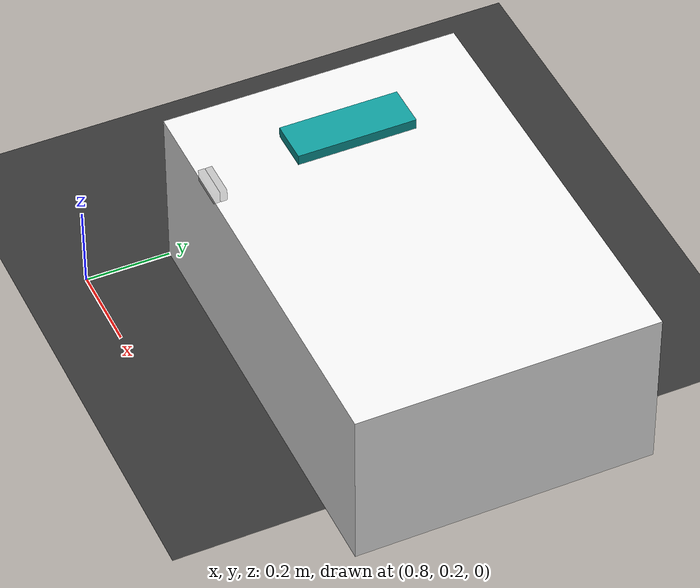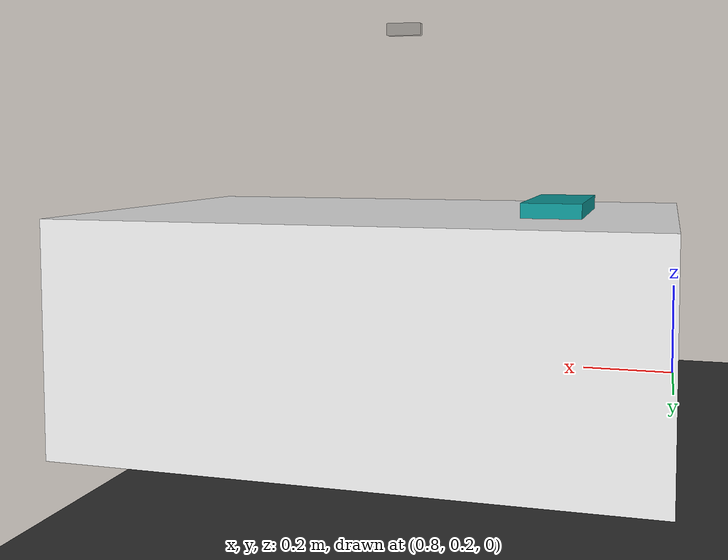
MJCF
<?xml version="1.0" encoding="utf-8"?>
<mujoco>
	<compiler angle="radian" coordinate="local" meshdir="../stls/fetch" texturedir="../textures"></compiler>
	<option timestep="0.002">
		<flag warmstart="enable"></flag>
	</option>

	<include file="shared.xml"></include>

	<worldbody>
		<geom name="floor0" pos="0.8 0.75 0" size="0.85 0.70 1" type="plane" condim="3" material="floor_mat"></geom>
		<body name="floor0" pos="0.8 0.75 0">
			<site name="target0" pos="0 0 0.5" size="0.02 0.02 0.02" rgba="1 0 0 0" type="sphere"></site>
		</body>

		<include file="invisible_robot.xml"></include>

		<body pos="1.3 0.75 0.2" name="table0">
			<geom size="0.5 0.35 0.2" type="box" mass="2000" material="table_mat"></geom>
		</body>
		<body name="sidecamera_target" pos="1 0.75 0.4">
			<site name="sidecamera_target" pos="0 0 0" size="0.1 0.1 0.1" rgba="1 0 0 0" type="sphere"></site>
		</body>
		<body name="object0" pos="1 0.75 0.4">
			<joint name="object0:joint" type="free" damping="0.01"></joint>
			<geom size="0.05 0.14 0.025" type="box" condim="3" name="object0" material="block_mat" mass="2"></geom>
			<site name="object0" pos="0 0 0" size="0.02 0.02 0.02" rgba="1 0 0 1" type="sphere"></site>
		</body>

		<light directional="true" ambient="0.2 0.2 0.2" diffuse="0.8 0.8 0.8" specular="0.3 0.3 0.3" castshadow="false" pos="0 0 4" dir="0 0 -1" name="light0"></light>

		<camera mode="targetbody" euler="0 0 1.57" fovy="43.3" name="object_sidecamera" pos="2 0 1" target="sidecamera_target"></camera>
	</worldbody>

	<actuator></actuator>
</mujoco>

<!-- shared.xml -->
<mujoco>
    <asset>
        <texture type="skybox" builtin="gradient" rgb1="0.44 0.85 0.56" rgb2="0.46 0.87 0.58" width="32" height="32"></texture>
        <texture name="texture_block" file="block.png" gridsize="3 4" gridlayout=".U..LFRB.D.."></texture>

        <material name="floor_mat" specular="0" shininess="0.5" reflectance="0" rgba="0.2 0.2 0.2 1"></material>
        <material name="table_mat" specular="0" shininess="0.5" reflectance="0" rgba="0.93 0.93 0.93 1"></material>
        <material name="block_mat" specular="0" shininess="0.5" reflectance="0" rgba="0.05 0.6 0.6 1"></material>
        <material name="puck_mat" specular="0" shininess="0.5" reflectance="0" rgba="0.2 0.2 0.2 1"></material>
        <material name="robot0:geomMat" shininess="0.03" specular="0.4"></material>
        <material name="robot0:gripper_finger_mat" shininess="0.03" specular="0.4" reflectance="0"></material>
        <material name="robot0:gripper_mat" shininess="0.03" specular="0.4" reflectance="0"></material>
        <material name="robot0:arm_mat" shininess="0.03" specular="0.4" reflectance="0"></material>
        <material name="robot0:head_mat" shininess="0.03" specular="0.4" reflectance="0"></material>
        <material name="robot0:torso_mat" shininess="0.03" specular="0.4" reflectance="0"></material>
        <material name="robot0:base_mat" shininess="0.03" specular="0.4" reflectance="0"></material>

        <mesh file="base_link_collision.stl" name="robot0:base_link"></mesh>
        <mesh file="bellows_link_collision.stl" name="robot0:bellows_link"></mesh>
        <mesh file="elbow_flex_link_collision.stl" name="robot0:elbow_flex_link"></mesh>
        <mesh file="estop_link.stl" name="robot0:estop_link"></mesh>
        <mesh file="forearm_roll_link_collision.stl" name="robot0:forearm_roll_link"></mesh>
        <mesh file="gripper_link.stl" name="robot0:gripper_link"></mesh>
        <mesh file="head_pan_link_collision.stl" name="robot0:head_pan_link"></mesh>
        <mesh file="head_tilt_link_collision.stl" name="robot0:head_tilt_link"></mesh>
        <mesh file="l_wheel_link_collision.stl" name="robot0:l_wheel_link"></mesh>
        <mesh file="laser_link.stl" name="robot0:laser_link"></mesh>
        <mesh file="r_wheel_link_collision.stl" name="robot0:r_wheel_link"></mesh>
        <mesh file="torso_lift_link_collision.stl" name="robot0:torso_lift_link"></mesh>
        <mesh file="shoulder_pan_link_collision.stl" name="robot0:shoulder_pan_link"></mesh>
        <mesh file="shoulder_lift_link_collision.stl" name="robot0:shoulder_lift_link"></mesh>
        <mesh file="upperarm_roll_link_collision.stl" name="robot0:upperarm_roll_link"></mesh>
        <mesh file="wrist_flex_link_collision.stl" name="robot0:wrist_flex_link"></mesh>
        <mesh file="wrist_roll_link_collision.stl" name="robot0:wrist_roll_link"></mesh>
        <mesh file="torso_fixed_link.stl" name="robot0:torso_fixed_link"></mesh>
    </asset>

    <equality>
        <weld body1="robot0:mocap" body2="robot0:gripper_link" solimp="0.9 0.95 0.001" solref="0.02 1"></weld>
    </equality>

    <contact>
        <exclude body1="robot0:r_gripper_finger_link" body2="robot0:l_gripper_finger_link"></exclude>
        <exclude body1="robot0:torso_lift_link" body2="robot0:torso_fixed_link"></exclude>
        <exclude body1="robot0:torso_lift_link" body2="robot0:shoulder_pan_link"></exclude>
    </contact>

    <default>
        <default class="robot0:fetch">
            <geom margin="0.001" material="robot0:geomMat" rgba="1 1 1 1" solimp="0.99 0.99 0.01" solref="0.01 1" type="mesh" user="0"></geom>
            <joint armature="1" damping="50" frictionloss="0" stiffness="0"></joint>

            <default class="robot0:fetchGripper">
                <geom condim="4" margin="0.001" type="box" user="0" rgba="0.356 0.361 0.376 1.0"></geom>
                <joint armature="100" damping="1000" limited="true" solimplimit="0.99 0.999 0.01" solreflimit="0.01 1" type="slide"></joint>
            </default>

            <default class="robot0:grey">
                <geom rgba="0.356 0.361 0.376 1.0"></geom>
            </default>
            <default class="robot0:blue">
                <geom rgba="0.086 0.506 0.767 1.0"></geom>
            </default>
        </default>
    </default>
</mujoco>

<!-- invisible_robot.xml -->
<mujoco>
	<body mocap="true" name="robot0:mocap" pos="0 0 0">
		<geom conaffinity="0" contype="0" pos="0 0 0" rgba="0 0 0 0" size="0.005 0.005 0.005" type="box"></geom>
		<geom conaffinity="0" contype="0" pos="0 0 0" rgba="0 0 0 0" size="1 0.005 0.005" type="box"></geom>
		<geom conaffinity="0" contype="0" pos="0 0 0" rgba="0 0 0 0" size="0.005 1 0.001" type="box"></geom>
		<geom conaffinity="0" contype="0" pos="0 0 0" rgba="0 0 0 0" size="0.005 0.005 1" type="box"></geom>
	</body>
	<body childclass="robot0:fetch" name="robot0:base_link" pos="0.2869 0.2641 0">
		<joint armature="0.0001" axis="1 0 0" damping="1e+11" name="robot0:slide0" pos="0 0 0" type="slide"></joint>
		<joint armature="0.0001" axis="0 1 0" damping="1e+11" name="robot0:slide1" pos="0 0 0" type="slide"></joint>
		<joint armature="0.0001" axis="0 0 1" damping="1e+11" name="robot0:slide2" pos="0 0 0" type="slide"></joint>
		<inertial diaginertia="1.2869 1.2236 0.9868" mass="70.1294" pos="-0.0036 0 0.0014" quat="0.7605 -0.0133 -0.0061 0.6491"></inertial>
		<geom rgba="0 0 0 0" mesh="robot0:base_link" name="robot0:base_link" material="robot0:base_mat" class="robot0:grey"></geom>
		<body name="robot0:torso_lift_link" pos="-0.0869 0 0.3774">
			<inertial diaginertia="0.3365 0.3354 0.0943" mass="10.7796" pos="-0.0013 -0.0009 0.2935" quat="0.9993 -0.0006 0.0336 0.0185"></inertial>
			<joint axis="0 0 1" damping="1e+07" name="robot0:torso_lift_joint" range="0.0386 0.3861" type="slide"></joint>
			<geom rgba="0 0 0 0" mesh="robot0:torso_lift_link" name="robot0:torso_lift_link" material="robot0:torso_mat"></geom>
			<body name="robot0:head_pan_link" pos="0.0531 0 0.603">
				<inertial diaginertia="0.0185 0.0128 0.0095" mass="2.2556" pos="0.0321 0.0161 0.039" quat="0.5148 0.5451 -0.453 0.4823"></inertial>
				<joint axis="0 0 1" name="robot0:head_pan_joint" range="-1.57 1.57"></joint>
				<geom rgba="0 0 0 0" mesh="robot0:head_pan_link" name="robot0:head_pan_link" material="robot0:head_mat" class="robot0:grey"></geom>
				<body name="robot0:head_tilt_link" pos="0.1425 0 0.058">
					<inertial diaginertia="0.0063 0.0059 0.0014" mass="0.9087" pos="0.0081 0.0025 0.0113" quat="0.6458 0.66 -0.274 0.2689"></inertial>
					<joint axis="0 1 0" damping="1000" name="robot0:head_tilt_joint" range="-0.76 1.45" ref="0.06"></joint>
					<geom rgba="0 0 0 0" mesh="robot0:head_tilt_link" name="robot0:head_tilt_link" material="robot0:head_mat" class="robot0:blue"></geom>
					<body name="robot0:head_camera_link" pos="0.055 0 0.0225">
						<inertial diaginertia="0 0 0" mass="0" pos="0.055 0 0.0225"></inertial>
						<body name="robot0:head_camera_rgb_frame" pos="0 0.02 0">
							<inertial diaginertia="0 0 0" mass="0" pos="0 0.02 0"></inertial>
							<body name="robot0:head_camera_rgb_optical_frame" pos="0 0 0" quat="0.5 -0.5 0.5 -0.5">
								<inertial diaginertia="0 0 0" mass="0" pos="0 0 0" quat="0.5 -0.5 0.5 -0.5"></inertial>
								<camera euler="3.1415 0 0" fovy="50" name="head_camera_rgb" pos="0 0 0"></camera>
							</body>
						</body>
						<body name="robot0:head_camera_depth_frame" pos="0 0.045 0">
							<inertial diaginertia="0 0 0" mass="0" pos="0 0.045 0"></inertial>
							<body name="robot0:head_camera_depth_optical_frame" pos="0 0 0" quat="0.5 -0.5 0.5 -0.5">
								<inertial diaginertia="0 0 0" mass="0" pos="0 0 0" quat="0.5 -0.5 0.5 -0.5"></inertial>
							</body>
						</body>
					</body>
				</body>
			</body>
			<body name="robot0:shoulder_pan_link" pos="0.1195 0 0.3486">
				<inertial diaginertia="0.009 0.0086 0.0041" mass="2.5587" pos="0.0927 -0.0056 0.0564" quat="-0.1364 0.7624 -0.1562 0.613"></inertial>
				<joint axis="0 0 1" name="robot0:shoulder_pan_joint" range="-1.6056 1.6056"></joint>
				<geom rgba="0 0 0 0" mesh="robot0:shoulder_pan_link" name="robot0:shoulder_pan_link" material="robot0:arm_mat"></geom>
				<body name="robot0:shoulder_lift_link" pos="0.117 0 0.06">
					<inertial diaginertia="0.0116 0.0112 0.0023" mass="2.6615" pos="0.1432 0.0072 -0.0001" quat="0.4382 0.4382 0.555 0.555"></inertial>
					<joint axis="0 1 0" name="robot0:shoulder_lift_joint" range="-1.221 1.518"></joint>
					<geom rgba="0 0 0 0" mesh="robot0:shoulder_lift_link" name="robot0:shoulder_lift_link" material="robot0:arm_mat" class="robot0:blue"></geom>
					<body name="robot0:upperarm_roll_link" pos="0.219 0 0">
						<inertial diaginertia="0.0047 0.0045 0.0019" mass="2.3311" pos="0.1165 0.0014 0" quat="-0.0136 0.707 0.0136 0.707"></inertial>
						<joint axis="1 0 0" limited="false" name="robot0:upperarm_roll_joint"></joint>
						<geom rgba="0 0 0 0" mesh="robot0:upperarm_roll_link" name="robot0:upperarm_roll_link" material="robot0:arm_mat"></geom>
						<body name="robot0:elbow_flex_link" pos="0.133 0 0">
							<inertial diaginertia="0.0086 0.0084 0.002" mass="2.1299" pos="0.1279 0.0073 0" quat="0.4332 0.4332 0.5589 0.5589"></inertial>
							<joint axis="0 1 0" name="robot0:elbow_flex_joint" range="-2.251 2.251"></joint>
							<geom rgba="0 0 0 0" mesh="robot0:elbow_flex_link" name="robot0:elbow_flex_link" material="robot0:arm_mat" class="robot0:blue"></geom>
							<body name="robot0:forearm_roll_link" pos="0.197 0 0">
								<inertial diaginertia="0.0035 0.0031 0.0015" mass="1.6563" pos="0.1097 -0.0266 0" quat="-0.0715 0.7035 0.0715 0.7035"></inertial>
								<joint armature="2.7538" axis="1 0 0" damping="3.5247" frictionloss="0" limited="false" name="robot0:forearm_roll_joint" stiffness="10"></joint>
								<geom rgba="0 0 0 0" mesh="robot0:forearm_roll_link" name="robot0:forearm_roll_link" material="robot0:arm_mat"></geom>
								<body name="robot0:wrist_flex_link" pos="0.1245 0 0">
									<inertial diaginertia="0.0042 0.0042 0.0018" mass="1.725" pos="0.0882 0.0009 -0.0001" quat="0.4895 0.4895 0.5103 0.5103"></inertial>
									<joint axis="0 1 0" name="robot0:wrist_flex_joint" range="-2.16 2.16"></joint>
									<geom rgba="0 0 0 0" mesh="robot0:wrist_flex_link" name="robot0:wrist_flex_link" material="robot0:arm_mat" class="robot0:blue"></geom>
									<body name="robot0:wrist_roll_link" pos="0.1385 0 0">
										<inertial diaginertia="0.0001 0.0001 0.0001" mass="0.1354" pos="0.0095 0.0004 -0.0002"></inertial>
										<joint axis="1 0 0" limited="false" name="robot0:wrist_roll_joint"></joint>
										<geom rgba="0 0 0 0" mesh="robot0:wrist_roll_link" name="robot0:wrist_roll_link" material="robot0:arm_mat"></geom>
										<body euler="0 0 0" name="robot0:gripper_link" pos="0.1664 0 0">
											<inertial diaginertia="0.0024 0.0019 0.0013" mass="1.5175" pos="-0.09 -0.0001 -0.0017" quat="0 0.7071 0 0.7071"></inertial>
											<geom rgba="0 0 0 0" mesh="robot0:gripper_link" name="robot0:gripper_link" material="robot0:gripper_mat"></geom>
											<body name="robot0:gripper_camera_link" pos="0.055 0 0.0225">
												<body name="robot0:gripper_camera_rgb_frame" pos="0 0.02 0">
													<body name="robot0:gripper_camera_rgb_optical_frame" pos="0 0 0" quat="0.5 -0.5 0.5 -0.5">
														<camera euler="3.1415 0 0" fovy="50" name="gripper_camera_rgb" pos="0 0 0"></camera>
													</body>
												</body>
												<body name="robot0:gripper_camera_depth_frame" pos="0 0.045 0">
													<body name="robot0:gripper_camera_depth_optical_frame" pos="0 0 0" quat="0.5 -0.5 0.5 -0.5"></body>
												</body>
											</body>

											<body childclass="robot0:fetchGripper" name="robot0:r_gripper_finger_link" pos="0 0.0159 0">
												<inertial diaginertia="0.1 0.1 0.1" mass="4" pos="-0.01 0 0"></inertial>
												<joint axis="0 1 0" name="robot0:r_gripper_finger_joint" range="0 0.05"></joint>
												<geom pos="0 -0.008 0" size="0.0385 0.007 0.0135" type="box" name="robot0:r_gripper_finger_link" material="robot0:gripper_finger_mat" condim="4" friction="1 0.05 0.01" rgba="0 0 0 0.05"></geom>
											</body>
											<body childclass="robot0:fetchGripper" name="robot0:l_gripper_finger_link" pos="0 -0.0159 0">
												<inertial diaginertia="0.1 0.1 0.1" mass="4" pos="-0.01 0 0"></inertial>
												<joint axis="0 -1 0" name="robot0:l_gripper_finger_joint" range="0 0.05"></joint>
												<geom pos="0 0.008 0" size="0.0385 0.007 0.0135" type="box" name="robot0:l_gripper_finger_link" material="robot0:gripper_finger_mat" condim="4" friction="1 0.05 0.01" rgba="0 0 0 0.05"></geom>
											</body>
											<site name="robot0:grip" pos="0.02 0 0" rgba="0 0 0 0" size="0.02 0.02 0.02"></site>
										</body>
									</body>
								</body>
							</body>
						</body>
					</body>
				</body>
			</body>
		</body>
		<body name="robot0:estop_link" pos="-0.1246 0.2389 0.3113" quat="0.7071 0.7071 0 0">
			<inertial diaginertia="0 0 0" mass="0.002" pos="0.0024 -0.0033 0.0067" quat="0.3774 -0.1814 0.1375 0.8977"></inertial>
			<geom mesh="robot0:estop_link" rgba="0.8 0 0 0" name="robot0:estop_link"></geom>
		</body>
		<body name="robot0:laser_link" pos="0.235 0 0.2878" quat="0 1 0 0">
			<inertial diaginertia="0 0 0" mass="0.0083" pos="-0.0306 0.0007 0.0552" quat="0.5878 0.5378 -0.4578 0.3945"></inertial>
			<geom mesh="robot0:laser_link" rgba="0.7922 0.8196 0.9333 0" name="robot0:laser_link"></geom>
			<camera euler="1.55 -1.55 3.14" fovy="25" name="lidar" pos="0 0 0.02"></camera>
		</body>
		<body name="robot0:torso_fixed_link" pos="-0.0869 0 0.3774">
			<inertial diaginertia="0.3865 0.3394 0.1009" mass="13.2775" pos="-0.0722 0.0057 0.2656" quat="0.9995 0.0249 0.0177 0.011"></inertial>
			<geom rgba="0 0 0 0" mesh="robot0:torso_fixed_link" name="robot0:torso_fixed_link" class="robot0:blue"></geom>
		</body>
		<body name="robot0:external_camera_body_0" pos="0.2 0 0">
			<camera euler="0 0.6 1.57" fovy="43.3" name="external_camera_0" pos="0.9 0 1.2"></camera>
		</body>
	</body>
</mujoco>
